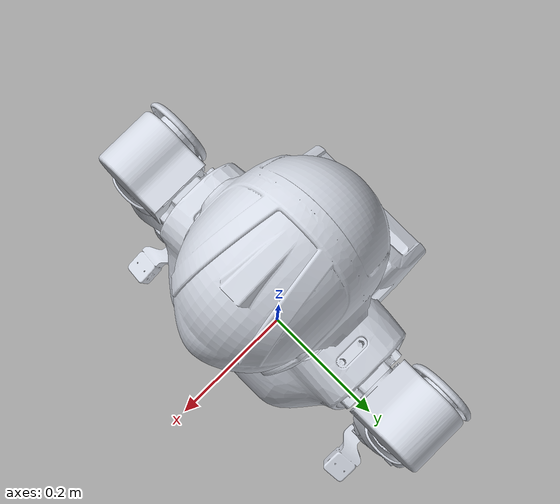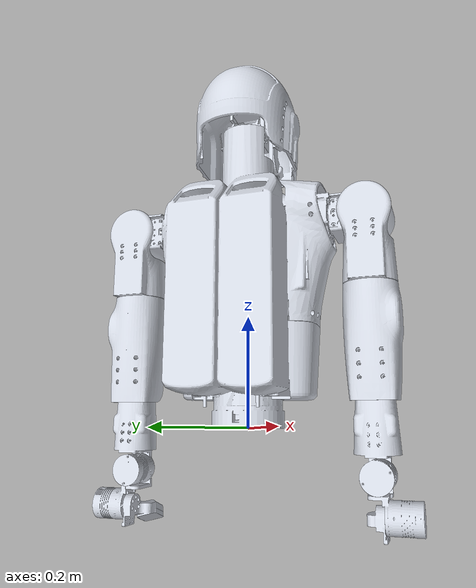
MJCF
<!-- DARU_NEW_260323 Model MJCF -->
<mujoco model="DARU_NEW_260323">
  <compiler angle="radian" autolimits="true"/>
  <default>
    <joint armature="0.001" damping="0.01" />
  </default>

  <asset>
    <mesh name="Base" content_type="model/stl" file="meshes/Base.STL"/>
    <mesh name="UB_Link" content_type="model/stl" file="meshes/UB_Link.STL"/>
    <mesh name="RSP_Link" content_type="model/stl" file="meshes/RSP_Link.STL"/>
    <mesh name="RSR_Link" content_type="model/stl" file="meshes/RSR_Link.STL"/>
    <mesh name="RSY_Link" content_type="model/stl" file="meshes/RSY_Link.STL"/>
    <mesh name="REP_Link" content_type="model/stl" file="meshes/REP_Link.STL"/>
    <mesh name="REY_Link" content_type="model/stl" file="meshes/REY_Link.STL"/>
    <mesh name="RWR_Link" content_type="model/stl" file="meshes/RWR_Link.STL"/>
    <mesh name="RWP_Link" content_type="model/stl" file="meshes/RWP_Link.STL"/>
    <mesh name="LSP_Link" content_type="model/stl" file="meshes/LSP_Link.STL"/>
    <mesh name="LSR_Link" content_type="model/stl" file="meshes/LSR_Link.STL"/>
    <mesh name="LSY_Link" content_type="model/stl" file="meshes/LSY_Link.STL"/>
    <mesh name="LEP_Link" content_type="model/stl" file="meshes/LEP_Link.STL"/>
    <mesh name="LEY_Link" content_type="model/stl" file="meshes/LEY_Link.STL"/>
    <mesh name="LWR_Link" content_type="model/stl" file="meshes/LWR_Link.STL"/>
    <mesh name="LWP_Link" content_type="model/stl" file="meshes/LWP_Link.STL"/>
    <mesh name="HY_Link" content_type="model/stl" file="meshes/HY_Link.STL"/>
    <mesh name="HP_Link" content_type="model/stl" file="meshes/HP_Link.STL"/>

    <material name="robot_mat" rgba="0.82 0.84 0.88 1"/>
  </asset>

  <worldbody>
    <body name="Base">
      <geom type="mesh" material="robot_mat" mesh="Base"/>
      <body name="UB_Link">
      <inertial pos="-0.0507646 2.076e-05 0.269453" quat="0.999045 0.000129377 0.0436833 -0.000203278" mass="14.7807" diaginertia="0.274438 0.254941 0.146742"/>
      <joint name="Waist_Joint" pos="0 0 0" axis="0 0 1" range="-3.14 3.14" actuatorfrcrange="-150 150" frictionloss="0.5"/>
      <geom type="mesh" material="robot_mat" mesh="UB_Link"/>
      <body name="RSP_Link" pos="0 -0.225 0.3725">
        <inertial pos="0.00033313 0.00631764 0.00011791" quat="0.469401 0.470201 -0.526788 0.530159" mass="1.09643" diaginertia="0.00148436 0.00143505 0.00116252"/>
        <joint name="RSP_Joint" pos="0 0 0" axis="0 1 0" range="-4.46 0.8378" actuatorfrcrange="-30 30" frictionloss="0.3"/>
        <geom type="mesh" material="robot_mat" mesh="RSP_Link"/>
        <body name="RSR_Link">
          <inertial pos="-0.00773789 -0.00013658 -0.0808405" quat="0.692031 -0.170654 -0.177473 0.678582" mass="1.1089" diaginertia="0.00200261 0.00190758 0.001159"/>
          <joint name="RSR_Joint" pos="0 0 0" axis="1 0 0" range="-3.491 0.349" actuatorfrcrange="-30 30" frictionloss="0.3"/>
          <geom type="mesh" material="robot_mat" mesh="RSR_Link"/>
          <body name="RSY_Link">
            <inertial pos="-0.00104042 -0.00328212 -0.191833" quat="0.998994 0.0254289 0.0349831 0.0118134" mass="1.31388" diaginertia="0.00303097 0.00294897 0.00136975"/>
            <joint name="RSY_Joint" pos="0 0 0" axis="0 0 1" range="-2.88 2.88" actuatorfrcrange="-30 30" frictionloss="0.3"/>
            <geom type="mesh" material="robot_mat" mesh="RSY_Link"/>
            <body name="REP_Link" pos="0 0 -0.3">
              <inertial pos="-0.0013698 -3.287e-05 -0.0692101" quat="0.726958 -0.0147117 -0.0142461 0.686377" mass="0.442059" diaginertia="0.00080198 0.000775082 0.000248848"/>
              <joint name="REP_Joint" pos="0 0 0" axis="0 1 0" range="-2.356 0" actuatorfrcrange="-30 30" frictionloss="0.3"/>
              <geom type="mesh" material="robot_mat" mesh="REP_Link"/>
              <body name="REY_Link">
                <inertial pos="0.00267605 -5.449e-05 -0.144684" quat="0.661611 0.191342 0.155231 0.708211" mass="0.306356" diaginertia="0.000192415 0.000178187 0.000163848"/>
                <joint name="REY_Joint" pos="0 0 0" axis="0 0 1" range="-1.571 1.571" actuatorfrcrange="-5 5" frictionloss="0.2"/>
                <geom type="mesh" material="robot_mat" mesh="REY_Link"/>
                <body name="RWR_Link" pos="0 0 -0.148">
                  <inertial pos="0.00297563 -0.0284565 -0.0553425" quat="0.917533 -0.288581 0.219655 0.163111" mass="0.329053" diaginertia="0.000333126 0.000317397 0.000167577"/>
                  <joint name="RWR_Joint" pos="0 0 0" axis="1 0 0" range="-1.571 1.571" actuatorfrcrange="-5 5" frictionloss="0.2"/>
                  <geom type="mesh" material="robot_mat" mesh="RWR_Link"/>
                  <body name="RWP_Link" pos="0 0 -0.0625">
                    <inertial pos="0.0431291 -0.00434224 -0.0143786" quat="-0.166252 0.740498 -0.250776 0.600945" mass="0.108733" diaginertia="0.000178378 0.000173519 2.43732e-05"/>
                    <joint name="RWP_Joint" pos="0 0 0" axis="0 1 0" range="-1.571 1.571" actuatorfrcrange="-5 5" frictionloss="0.1"/>
                    <geom type="mesh" material="robot_mat" mesh="RWP_Link"/>
                  </body>
                </body>
              </body>
            </body>
          </body>
        </body>
      </body>
      <body name="LSP_Link" pos="0 0.225 0.3725">
        <inertial pos="0.00023229 -0.00621771 -0.00015876" quat="0.524908 0.534257 -0.466047 0.471" mass="1.09329" diaginertia="0.00146957 0.00142974 0.00115004"/>
        <joint name="LSP_Joint" pos="0 0 0" axis="0 1 0" range="-4.46 0.8378" actuatorfrcrange="-30 30" frictionloss="0.3"/>
        <geom type="mesh" material="robot_mat" mesh="LSP_Link"/>
        <body name="LSR_Link">
          <inertial pos="-0.00773794 -0.00013656 -0.0808405" quat="0.692032 -0.170655 -0.177474 0.678581" mass="1.1089" diaginertia="0.00200261 0.0019076 0.00115899"/>
          <joint name="LSR_Joint" pos="0 0 0" axis="1 0 0" range="-0.349 3.491" actuatorfrcrange="-30 30" frictionloss="0.3"/>
          <geom type="mesh" material="robot_mat" mesh="LSR_Link"/>
          <body name="LSY_Link">
            <inertial pos="-0.00129204 0.00333021 -0.19157" quat="0.99714 -0.0219468 0.0377979 0.061652" mass="1.30782" diaginertia="0.00300549 0.0029214 0.00136631"/>
            <joint name="LSY_Joint" pos="0 0 0" axis="0 0 1" range="-2.88 2.88" actuatorfrcrange="-30 30" frictionloss="0.3"/>
            <geom type="mesh" material="robot_mat" mesh="LSY_Link"/>
            <body name="LEP_Link" pos="0 0 -0.3">
              <inertial pos="-0.00136083 3.812e-05 -0.06921" quat="0.690403 -0.0141392 -0.0146771 0.723138" mass="0.442059" diaginertia="0.000802411 0.000774652 0.000248867"/>
              <joint name="LEP_Joint" pos="0 0 0" axis="0 1 0" range="-2.356 0" actuatorfrcrange="-30 30" frictionloss="0.3"/>
              <geom type="mesh" material="robot_mat" mesh="LEP_Link"/>
              <body name="LEY_Link">
                <inertial pos="0.00267605 -0.00012191 -0.144582" quat="0.670867 0.136457 0.134863 0.71633" mass="0.306356" diaginertia="0.000195047 0.000176732 0.000162241"/>
                <joint name="LEY_Joint" pos="0 0 0" axis="0 0 1" range="-1.571 1.571" actuatorfrcrange="-5 5" frictionloss="0.2"/>
                <geom type="mesh" material="robot_mat" mesh="LEY_Link"/>
                <body name="LWR_Link" pos="0 0 -0.148">
                  <inertial pos="0.0029249 0.0293125 -0.0554304" quat="0.903175 0.281632 0.242805 -0.214485" mass="0.329053" diaginertia="0.000336821 0.000321128 0.000167"/>
                  <joint name="LWR_Joint" pos="0 0 0" axis="1 0 0" range="-1.571 1.571" actuatorfrcrange="-5 5" frictionloss="0.2"/>
                  <geom type="mesh" material="robot_mat" mesh="LWR_Link"/>
                  <body name="LWP_Link" pos="0 0 -0.0625">
                    <inertial pos="0.0431343 0.00528524 -0.0143643" quat="0.16844 0.739926 0.252005 0.600526" mass="0.108733" diaginertia="0.000178364 0.000173494 2.43421e-05"/>
                    <joint name="LWP_Joint" pos="0 0 0" axis="0 1 0" range="-1.571 1.571" actuatorfrcrange="-5 5" frictionloss="0.1"/>
                    <geom type="mesh" material="robot_mat" mesh="LWP_Link"/>
                  </body>
                </body>
              </body>
            </body>
          </body>
        </body>
      </body>
      <body name="HY_Link" pos="0 0 0.5655" quat="0.99994 3.14719e-05 0.0105453 -0.00298428">
        <inertial pos="-0.00136668 -0.00281064 -0.0163791" quat="0.709902 0.686287 0.119444 -0.103836" mass="0.0824974" diaginertia="6.43821e-05 5.72521e-05 4.95557e-05"/>
        <joint name="HY_Joint" pos="0 0 0" axis="0 0 1" range="-1.571 1.571" actuatorfrcrange="-7 7"/>
        <geom type="mesh" material="robot_mat" mesh="HY_Link"/>
        <body name="HP_Link">
          <inertial pos="0.0113946 -0.00069587 0.032575" quat="0.935722 0.00167622 -0.35249 -0.0131194" mass="0.94946" diaginertia="0.00662813 0.00602591 0.00512292"/>
          <joint name="HP_Joint" pos="0 0 0" axis="0 1 0" range="-0.785 0.349" actuatorfrcrange="-7 7"/>
          <geom type="mesh" material="robot_mat" mesh="HP_Link"/>
        </body>
      </body>
    </body>
  </body>
  </worldbody>

  <contact>
    <exclude body1="Base" body2="UB_Link"/>
    <exclude body1="UB_Link" body2="RSP_Link"/>
    <exclude body1="RSP_Link" body2="RSR_Link"/>
    <exclude body1="RSR_Link" body2="RSY_Link"/>
    <exclude body1="RSY_Link" body2="REP_Link"/>
    <exclude body1="REP_Link" body2="REY_Link"/>
    <exclude body1="REY_Link" body2="RWR_Link"/>
    <exclude body1="RWR_Link" body2="RWP_Link"/>

    <exclude body1="UB_Link" body2="LSP_Link"/>
    <exclude body1="LSP_Link" body2="LSR_Link"/>
    <exclude body1="LSR_Link" body2="LSY_Link"/>
    <exclude body1="LSY_Link" body2="LEP_Link"/>
    <exclude body1="LEP_Link" body2="LEY_Link"/>
    <exclude body1="LEY_Link" body2="LWR_Link"/>
    <exclude body1="LWR_Link" body2="LWP_Link"/>

    <exclude body1="UB_Link" body2="HY_Link"/>
    <exclude body1="UB_Link" body2="HP_Link"/>
    <exclude body1="HY_Link" body2="HP_Link"/>
  </contact>

</mujoco>
